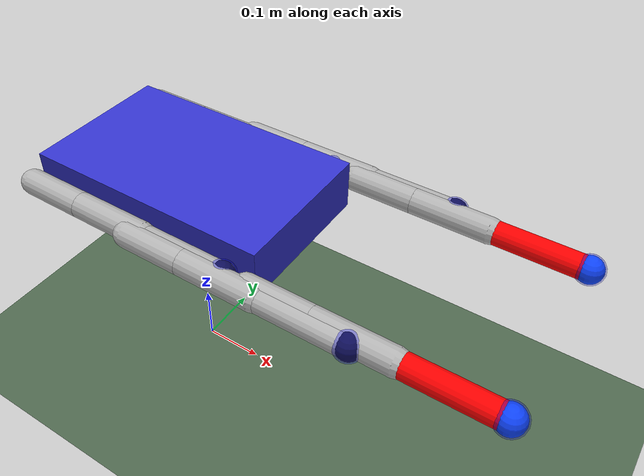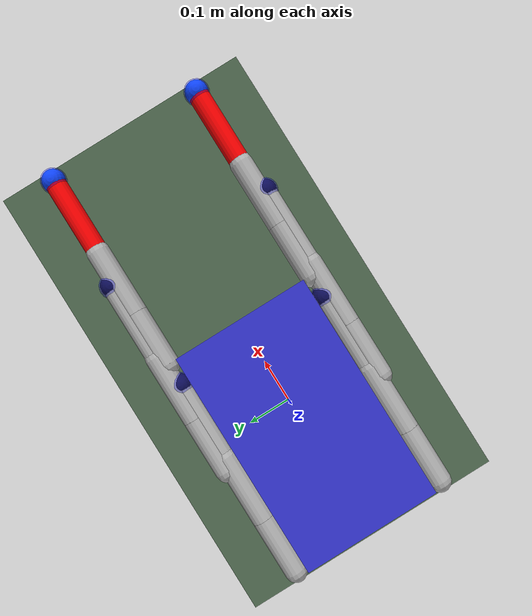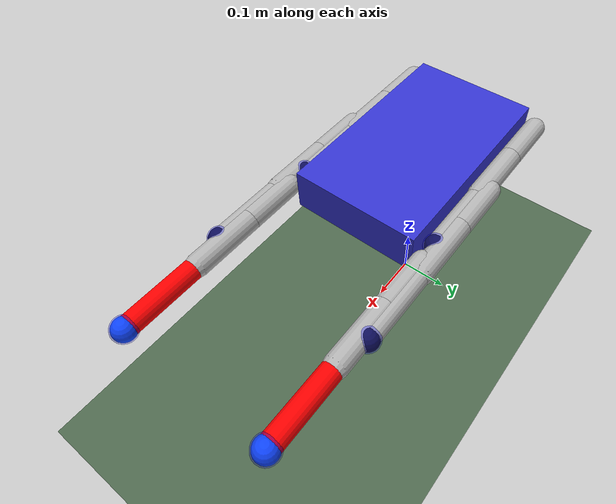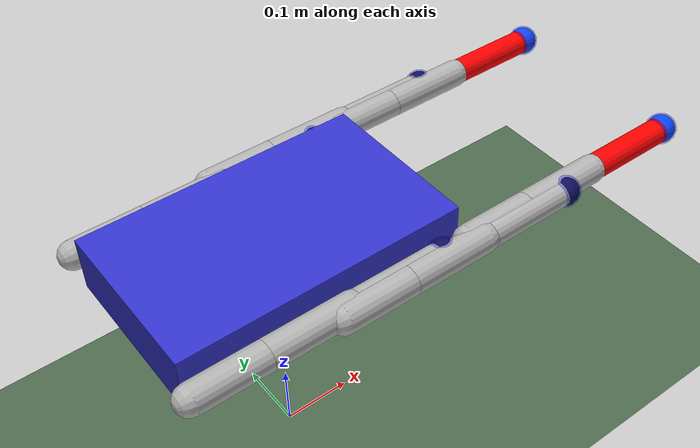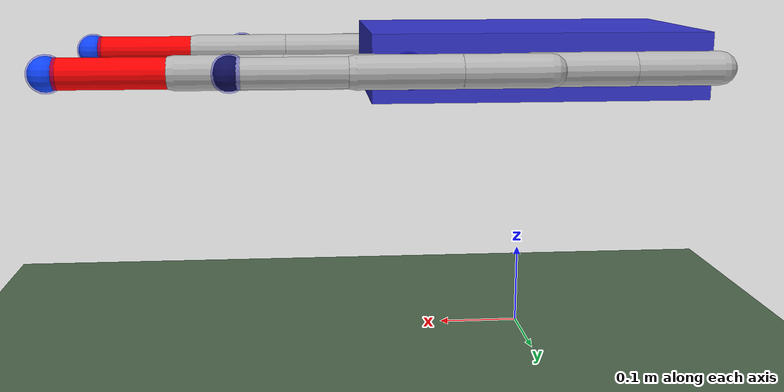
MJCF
<mujoco model="hexapod">
  <compiler angle="degree" inertiafromgeom="true"/>
  <option gravity="0 0 -9.81" integrator="RK4" timestep="0.002"/>

  <asset>
    <texture name="tile_tex" type="2d" builtin="checker"
             rgb1="1 1 1" rgb2="0.2 0.2 0.2"
             width="512" height="512"/>
    <material name="tile_mat" texture="tile_tex" texrepeat="20 20" rgba="1 1 1 1"/>
  </asset>

  <default>
    <joint limited="true" damping="0.2" armature="0.01"/>
    <geom type="capsule" density="1200"
          friction="1.0 0.01 0.001"
          rgba="0.7 0.7 0.7 1"
          contype="1" conaffinity="1"
          solimp="0.95 0.99 0.001"
          solref="0.02 1"/>

    <!-- 발 전용 -->
    <default class="foot">
      <geom type="sphere"
            friction="1.5 0.02 0.001"
            margin="0.002"
            contype="1" conaffinity="1"
            solimp="0.95 0.995 0.001"
            solref="0.01 1"/>
    </default>

    <!-- SG90 서보 기본값 (position 서보) -->
    <default class="sg90">
      <!-- kp는 필요시 15→20~25로 올려보기, forcerange는 SG90 기준 약간 여유 -->
      <position kp="25" forcerange="-0.3 0.3"/>
    </default>
  </default>

  <worldbody>
    <!-- 조명/카메라(선택) -->
    <light name="sun" directional="true"
       diffuse="0.2 0.2 0.2"
       ambient="0.35 0.35 0.35"
       specular="0.25 0.25 0.25"
       pos="0 0 5" dir="0 0 -1"/>
    <camera name="cam_fixed" pos="1.6 -2.2 1.0" euler="30 0 30"/>

    <body name="terrain" pos="0 0 0">
      <geom name="ground" type="plane" size="5 5 0.1" material="tile_mat" rgba="0.3 0.4 0.3 1"/>
    </body>

    <body name="torso" pos="0 0 0.35">
      <joint name="root_free" type="free"/>
      <geom name="torso_geom" type="box" size="0.20 0.12 0.04" rgba="0.2 0.2 0.8 1" mass="0.1"/>
      <site name="imu_site" pos="0 0 0" size="0.01" rgba="1 0 0 0.3"/>

      <!-- ===== Front-Left ===== -->
      <body name="leg_fl_base" pos="0.20 0.14 0.00">
        <joint name="yaw_fl" type="hinge" axis="0 0 1" range="0 90"/>
        <geom  name="coxa_fl"  fromto="0 0 0  0.10 0 0" size="0.02" mass="0.01"/>

        <body name="leg_fl_hip" pos="0.10 0 0">
          <joint name="hip_fl" type="hinge" axis="0 1 0" range="-60 60"/>
          <geom  name="femur_fl" fromto="0 0 0  0.12 0 0" size="0.02" mass="0.01"/>

          <body name="leg_fl_knee" pos="0.12 0 0">
            <joint name="knee_fl" type="hinge" axis="0 1 0" range="-20 120"/>
            <geom  name="tibia_fl" fromto="0 0 0  0.14 0 0" size="0.018" mass="0.01" rgba="1 0 0 1"/>
            <geom  name="foot_fl"  type="sphere" class="foot" pos="0.14 0 0" size="0.02" mass="0.01" rgba="0.1 0.4 1.0 1"/>
            <site  name="foot_site_fl" pos="0.14 0 0" size="0.022" rgba="0 0 1 0.3"/>
          </body>
        </body>
      </body>

      <!-- ===== Front-Right ===== -->
      <body name="leg_fr_base" pos="0.20 -0.14 0.00">
        <joint name="yaw_fr" type="hinge" axis="0 0 1" range="-90 0"/>
        <geom  name="coxa_fr"  fromto="0 0 0  0.10 0 0" size="0.02" mass="0.01"/>

        <body name="leg_fr_hip" pos="0.10 0 0">
          <joint name="hip_fr" type="hinge" axis="0 1 0" range="-60 60"/>
          <geom  name="femur_fr" fromto="0 0 0  0.12 0 0" size="0.02" mass="0.01"/>

          <body name="leg_fr_knee" pos="0.12 0 0">
            <joint name="knee_fr" type="hinge" axis="0 1 0" range="-20 120"/>
            <geom  name="tibia_fr" fromto="0 0 0  0.14 0 0" size="0.018" mass="0.01" rgba="1 0 0 1"/>
            <geom  name="foot_fr"  type="sphere" class="foot" pos="0.14 0 0" size="0.02" mass="0.01" rgba="0.1 0.4 1.0 1"/>
            <site  name="foot_site_fr" pos="0.14 0 0" size="0.022" rgba="0 0 1 0.3"/>
          </body>
        </body>
      </body>

      <!-- ===== Mid-Left ===== -->
      <body name="leg_ml_base" pos="0.00 0.15 0.00">
        <joint name="yaw_ml" type="hinge" axis="0 0 1" range="45 135"/>
        <geom  name="coxa_ml"  fromto="0 0 0  0.10 0 0" size="0.02" mass="0.01"/>

        <body name="leg_ml_hip" pos="0.10 0 0">
          <joint name="hip_ml" type="hinge" axis="0 1 0" range="-60 60"/>
          <geom  name="femur_ml" fromto="0 0 0  0.12 0 0" size="0.02" mass="0.01"/>

          <body name="leg_ml_knee" pos="0.12 0 0">
            <joint name="knee_ml" type="hinge" axis="0 1 0" range="-20 120"/>
            <geom  name="tibia_ml" fromto="0 0 0  0.14 0 0" size="0.018" mass="0.01"/>
            <geom  name="foot_ml" class="foot"  type="sphere" pos="0.14 0 0" size="0.02" mass="0.01" rgba="0.1 0.1 0.1 1"/>
            <site  name="foot_site_ml" pos="0.14 0 0" size="0.022" rgba="0 0 1 0.3"/>
          </body>
        </body>
      </body>

      <!-- ===== Mid-Right ===== -->
      <body name="leg_mr_base" pos="0.00 -0.15 0.00">
        <joint name="yaw_mr" type="hinge" axis="0 0 1" range="-135 -45"/>
        <geom  name="coxa_mr"  fromto="0 0 0  0.10 0 0" size="0.02" mass="0.01"/>

        <body name="leg_mr_hip" pos="0.10 0 0">
          <joint name="hip_mr" type="hinge" axis="0 1 0" range="-60 60"/>
          <geom  name="femur_mr" fromto="0 0 0  0.12 0 0" size="0.02" mass="0.01"/>

          <body name="leg_mr_knee" pos="0.12 0 0">
            <joint name="knee_mr" type="hinge" axis="0 1 0" range="-20 120"/>
            <geom  name="tibia_mr" fromto="0 0 0  0.14 0 0" size="0.018" mass="0.01"/>
            <geom  name="foot_mr" class="foot"  type="sphere" pos="0.14 0 0" size="0.02" mass="0.01" rgba="0.1 0.1 0.1 1"/>
            <site  name="foot_site_mr" pos="0.14 0 0" size="0.022" rgba="0 0 1 0.3"/>
          </body>
        </body>
      </body>

      <!-- ===== Rear-Left ===== -->
      <body name="leg_rl_base" pos="-0.2 0.14 0.00">
        <joint name="yaw_rl" type="hinge" axis="0 0 1" range="90 180"/>
        <geom  name="coxa_rl"  fromto="0 0 0  0.10 0 0" size="0.02" mass="0.01"/>

        <body name="leg_rl_hip" pos="0.10 0 0">
          <joint name="hip_rl" type="hinge" axis="0 1 0" range="-60 60"/>
          <geom  name="femur_rl" fromto="0 0 0  0.12 0 0" size="0.02" mass="0.01"/>

          <body name="leg_rl_knee" pos="0.12 0 0">
            <joint name="knee_rl" type="hinge" axis="0 1 0" range="-20 120"/>
            <geom  name="tibia_rl" fromto="0 0 0  0.14 0 0" size="0.018" mass="0.01"/>
            <geom  name="foot_rl" class="foot" type="sphere" pos="0.14 0 0" size="0.02" mass="0.01" rgba="0.1 0.1 0.1 1"/>
            <site  name="foot_site_rl" pos="0.14 0 0" size="0.022" rgba="0 0 1 0.3"/>
          </body>
        </body>
      </body>

      <!-- ===== Rear-Right ===== -->
      <body name="leg_rr_base" pos="-0.2 -0.14 0.00">
        <joint name="yaw_rr" type="hinge" axis="0 0 1" range="-180 -90"/>
        <geom  name="coxa_rr"  fromto="0 0 0  0.10 0 0" size="0.02" mass="0.01"/>

        <body name="leg_rr_hip" pos="0.10 0 0">
          <joint name="hip_rr" type="hinge" axis="0 1 0" range="-60 60"/>
          <geom  name="femur_rr" fromto="0 0 0  0.12 0 0" size="0.02" mass="0.01"/>

          <body name="leg_rr_knee" pos="0.12 0 0">
            <joint name="knee_rr" type="hinge" axis="0 1 0" range="-20 120"/>
            <geom  name="tibia_rr" fromto="0 0 0  0.14 0 0" size="0.018" mass="0.01"/>
            <geom  name="foot_rr" class="foot" type="sphere" pos="0.14 0 0" size="0.02" mass="0.01" rgba="0.1 0.1 0.1 1"/>
            <site  name="foot_site_rr" pos="0.14 0 0" size="0.022" rgba="0 0 1 0.3"/>
          </body>
        </body>
      </body>
    </body>
  </worldbody>

  <sensor>
    <accelerometer name="imu_acc" site="imu_site"/>
    <gyro          name="imu_gyro" site="imu_site"/>
    <magnetometer  name="imu_mag" site="imu_site"/>
    <touch name="touch_fl" site="foot_site_fl"/>
    <touch name="touch_fr" site="foot_site_fr"/>
    <touch name="touch_ml" site="foot_site_ml"/>
    <touch name="touch_mr" site="foot_site_mr"/>
    <touch name="touch_rl" site="foot_site_rl"/>
    <touch name="touch_rr" site="foot_site_rr"/>
  </sensor>

  <actuator>
  <!-- Front-Left -->
    <position class="sg90" name="a_yaw_fl"  joint="yaw_fl"  ctrllimited="true" ctrlrange="0.0000 1.5708"/>
    <position class="sg90" name="a_hip_fl"  joint="hip_fl"  ctrllimited="true" ctrlrange="-1.0472 1.0472"/>
    <position class="sg90" name="a_knee_fl" joint="knee_fl" ctrllimited="true" ctrlrange="-0.3491 2.0944"/>

  <!-- Front-Right -->
    <position class="sg90" name="a_yaw_fr"  joint="yaw_fr"  ctrllimited="true" ctrlrange="-1.5708 0.0000"/>
    <position class="sg90" name="a_hip_fr"  joint="hip_fr"  ctrllimited="true" ctrlrange="-1.0472 1.0472"/>
    <position class="sg90" name="a_knee_fr" joint="knee_fr" ctrllimited="true" ctrlrange="-0.3491 2.0944"/>

  <!-- Mid-Left -->
    <position class="sg90" name="a_yaw_ml"  joint="yaw_ml"  ctrllimited="true" ctrlrange="0.7854 2.3562"/>
    <position class="sg90" name="a_hip_ml"  joint="hip_ml"  ctrllimited="true" ctrlrange="-1.0472 1.0472"/>
    <position class="sg90" name="a_knee_ml" joint="knee_ml" ctrllimited="true" ctrlrange="-0.3491 2.0944"/>

  <!-- Mid-Right -->
    <position class="sg90" name="a_yaw_mr"  joint="yaw_mr"  ctrllimited="true" ctrlrange="-2.3562 -0.7854"/>
    <position class="sg90" name="a_hip_mr"  joint="hip_mr"  ctrllimited="true" ctrlrange="-1.0472 1.0472"/>
    <position class="sg90" name="a_knee_mr" joint="knee_mr" ctrllimited="true" ctrlrange="-0.3491 2.0944"/>

  <!-- Rear-Left -->
    <position class="sg90" name="a_yaw_rl"  joint="yaw_rl"  ctrllimited="true" ctrlrange="1.5708 3.1416"/>
    <position class="sg90" name="a_hip_rl"  joint="hip_rl"  ctrllimited="true" ctrlrange="-1.0472 1.0472"/>
    <position class="sg90" name="a_knee_rl" joint="knee_rl" ctrllimited="true" ctrlrange="-0.3491 2.0944"/>

  <!-- Rear-Right -->
    <position class="sg90" name="a_yaw_rr"  joint="yaw_rr"  ctrllimited="true" ctrlrange="-3.1416 -1.5708"/>
    <position class="sg90" name="a_hip_rr"  joint="hip_rr"  ctrllimited="true" ctrlrange="-1.0472 1.0472"/>
    <position class="sg90" name="a_knee_rr" joint="knee_rr" ctrllimited="true" ctrlrange="-0.3491 2.0944"/>
  </actuator>

  <!-- 시작 포즈 (이름을 safe_start로 통일), 라디안으로.. mujoco에서 불러올 때 라디안으로 쓴다고 함 -->
  <keyframe>
    <key name="safe_start" qpos="
      0 0 0.26   1 0 0 0
      0.5236  -0.8 2    -0.5236  -0.8 2
      1.5708  -0.8 2    -1.5708  -0.8 2
      2.6180  -0.8 2    -2.6180  -0.8 2
    "/>
  </keyframe>
</mujoco>
